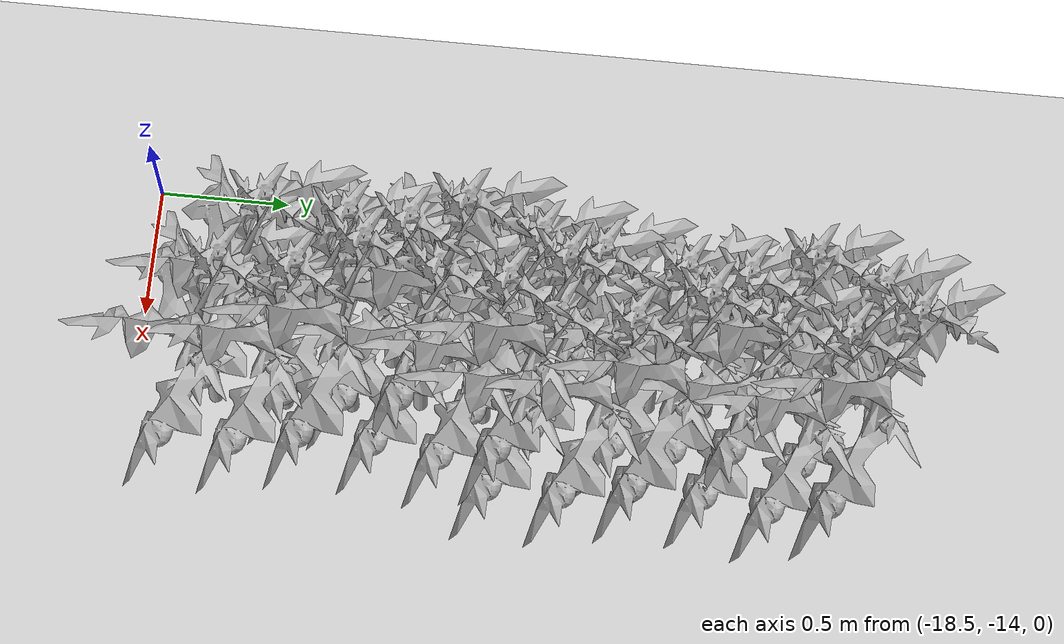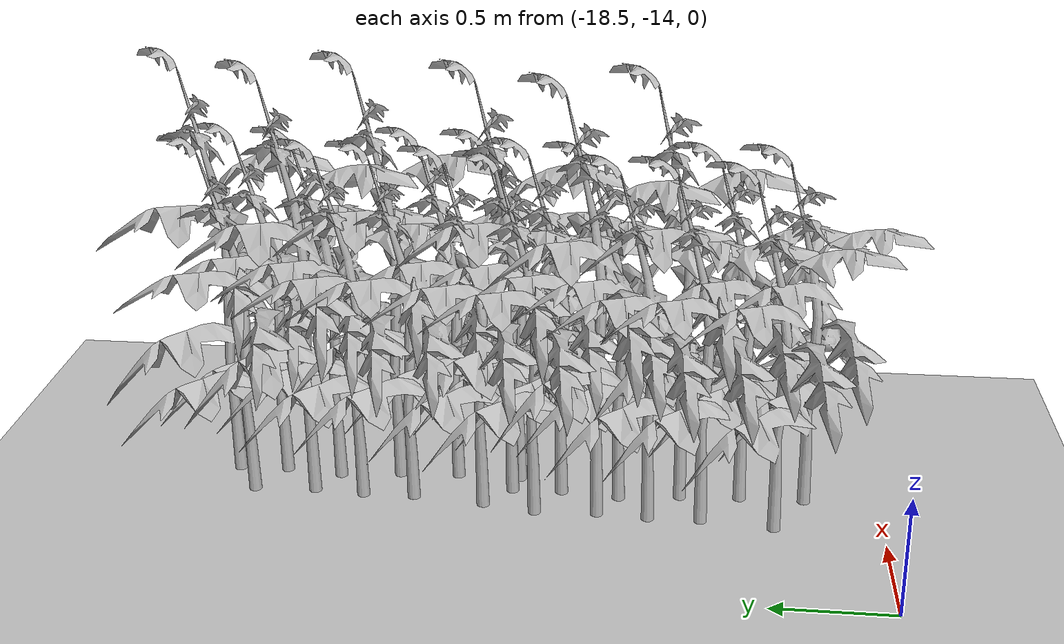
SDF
<sdf version="1.6">
 <world name="default">
  <model name="ground_plane">
   <static>1</static>
   <link name="link">
    <collision name="collision">
     <geometry><plane><normal>0 0 1</normal><size>100 100</size></plane></geometry>
     <surface>
      <contact><collide_bitmask>65535</collide_bitmask></contact>
      <friction><ode><mu>100</mu><mu2>50</mu2></ode></friction>
     </surface>
    </collision>
    <visual name="visual">
     <cast_shadows>0</cast_shadows>
     <geometry><plane><normal>0 0 1</normal><size>100 100</size></plane></geometry>
     <material>
      <script><uri>file://media/materials/scripts/gazebo.material</uri><name>Gazebo/Grey</name></script>
     </material>
    </visual>
   </link>
  </model>
  <model name="Front_Plant_1">
   <model name="tomato_plant_medium">
    <static>1</static>
    <link name="link">
     <collision name="collision">
      <pose>0 0 0 1.5708 -0 0</pose>
      <geometry><mesh><scale>0.5 0.5 0.5</scale><uri>model://stick/meshes/stick.dae</uri></mesh></geometry>
     </collision>
     <visual name="visual">
      <geometry>
       <mesh><scale>5e-06 5e-06 6e-06</scale><uri>model://tomato_plant_medium/meshes/tomato-plant.dae</uri></mesh>
      </geometry>
     </visual>
    </link>
    <pose>0.087453 -0.595994 0.012396 0 -0 0</pose>
   </model>
   <model name="tomato_plant_medium_0">
    <static>1</static>
    <link name="link">
     <collision name="collision">
      <pose>0 0 0 1.5708 -0 0</pose>
      <geometry><mesh><scale>0.5 0.5 0.5</scale><uri>model://stick/meshes/stick.dae</uri></mesh></geometry>
     </collision>
     <visual name="visual">
      <geometry>
       <mesh><scale>5e-06 5e-06 6e-06</scale><uri>model://tomato_plant_medium/meshes/tomato-plant.dae</uri></mesh>
      </geometry>
     </visual>
    </link>
    <pose>-0.086166 -0.251822 0.012396 0 -0 0</pose>
   </model>
   <model name="tomato_plant_medium_1">
    <static>1</static>
    <link name="link">
     <collision name="collision">
      <pose>0 0 0 1.5708 -0 0</pose>
      <geometry><mesh><scale>0.5 0.5 0.5</scale><uri>model://stick/meshes/stick.dae</uri></mesh></geometry>
     </collision>
     <visual name="visual">
      <geometry>
       <mesh><scale>5e-06 5e-06 6e-06</scale><uri>model://tomato_plant_medium/meshes/tomato-plant.dae</uri></mesh>
      </geometry>
     </visual>
    </link>
    <pose>0.080199 0.118127 0.012396 0 -0 0</pose>
   </model>
   <model name="tomato_plant_small">
    <static>1</static>
    <link name="link">
     <collision name="collision">
      <pose>0 0 0 1.5708 -0 0</pose>
      <geometry><mesh><scale>0.5 0.45 0.5</scale><uri>model://stick/meshes/stick.dae</uri></mesh></geometry>
     </collision>
     <visual name="visual">
      <geometry>
       <mesh><scale>5e-06 5e-06 5e-06</scale><uri>model://tomato_plant_small/meshes/tomato-plant.dae</uri></mesh>
      </geometry>
     </visual>
    </link>
    <pose>0.099683 -1.12011 0.012396 0 -0 0</pose>
   </model>
   <model name="tomato_plant_small_0">
    <static>1</static>
    <link name="link">
     <collision name="collision">
      <pose>0 0 0 1.5708 -0 0</pose>
      <geometry><mesh><scale>0.5 0.45 0.5</scale><uri>model://stick/meshes/stick.dae</uri></mesh></geometry>
     </collision>
     <visual name="visual">
      <geometry>
       <mesh><scale>5e-06 5e-06 5e-06</scale><uri>model://tomato_plant_small/meshes/tomato-plant.dae</uri></mesh>
      </geometry>
     </visual>
    </link>
    <pose>-0.138771 -0.983982 0.012396 0 -0 0</pose>
   </model>
   <model name="tomato_plant_small_1">
    <static>1</static>
    <link name="link">
     <collision name="collision">
      <pose>0 0 0 1.5708 -0 0</pose>
      <geometry><mesh><scale>0.5 0.45 0.5</scale><uri>model://stick/meshes/stick.dae</uri></mesh></geometry>
     </collision>
     <visual name="visual">
      <geometry>
       <mesh><scale>5e-06 5e-06 5e-06</scale><uri>model://tomato_plant_small/meshes/tomato-plant.dae</uri></mesh>
      </geometry>
     </visual>
    </link>
    <pose>0.101334 -0.848814 0.012396 0 -0 0</pose>
   </model>
   <model name="tomato_plant_small_2">
    <static>1</static>
    <link name="link">
     <collision name="collision">
      <pose>0 0 0 1.5708 -0 0</pose>
      <geometry><mesh><scale>0.5 0.45 0.5</scale><uri>model://stick/meshes/stick.dae</uri></mesh></geometry>
     </collision>
     <visual name="visual">
      <geometry>
       <mesh><scale>5e-06 5e-06 5e-06</scale><uri>model://tomato_plant_small/meshes/tomato-plant.dae</uri></mesh>
      </geometry>
     </visual>
    </link>
    <pose>-0.103369 -0.683189 0.012396 0 -0 0</pose>
   </model>
   <model name="tomato_plant_small_3">
    <static>1</static>
    <link name="link">
     <collision name="collision">
      <pose>0 0 0 1.5708 -0 0</pose>
      <geometry><mesh><scale>0.5 0.45 0.5</scale><uri>model://stick/meshes/stick.dae</uri></mesh></geometry>
     </collision>
     <visual name="visual">
      <geometry>
       <mesh><scale>5e-06 5e-06 5e-06</scale><uri>model://tomato_plant_small/meshes/tomato-plant.dae</uri></mesh>
      </geometry>
     </visual>
    </link>
    <pose>-0.104381 -0.464811 0.012396 0 -0 0</pose>
   </model>
   <model name="tomato_plant_small_4">
    <static>1</static>
    <link name="link">
     <collision name="collision">
      <pose>0 0 0 1.5708 -0 0</pose>
      <geometry><mesh><scale>0.5 0.45 0.5</scale><uri>model://stick/meshes/stick.dae</uri></mesh></geometry>
     </collision>
     <visual name="visual">
      <geometry>
       <mesh><scale>5e-06 5e-06 5e-06</scale><uri>model://tomato_plant_small/meshes/tomato-plant.dae</uri></mesh>
      </geometry>
     </visual>
    </link>
    <pose>0.055604 -0.336879 0.012396 0 -0 0</pose>
   </model>
   <model name="tomato_plant_small_5">
    <static>1</static>
    <link name="link">
     <collision name="collision">
      <pose>0 0 0 1.5708 -0 0</pose>
      <geometry><mesh><scale>0.5 0.45 0.5</scale><uri>model://stick/meshes/stick.dae</uri></mesh></geometry>
     </collision>
     <visual name="visual">
      <geometry>
       <mesh><scale>5e-06 5e-06 5e-06</scale><uri>model://tomato_plant_small/meshes/tomato-plant.dae</uri></mesh>
      </geometry>
     </visual>
    </link>
    <pose>0.085059 -0.092572 0.012396 0 -0 0</pose>
   </model>
   <model name="tomato_plant_small_6">
    <static>1</static>
    <link name="link">
     <collision name="collision">
      <pose>0 0 0 1.5708 -0 0</pose>
      <geometry><mesh><scale>0.5 0.45 0.5</scale><uri>model://stick/meshes/stick.dae</uri></mesh></geometry>
     </collision>
     <visual name="visual">
      <geometry>
       <mesh><scale>5e-06 5e-06 5e-06</scale><uri>model://tomato_plant_small/meshes/tomato-plant.dae</uri></mesh>
      </geometry>
     </visual>
    </link>
    <pose>-0.096345 0.008888 0.012396 0 -0 0</pose>
   </model>
   <static>0</static>
   <pose>-17.7831 -12.5824 0 0 -0 0</pose>
  </model>
  <model name="Front_Plant_1_0">
   <model name="tomato_plant_medium">
    <static>1</static>
    <link name="link">
     <collision name="collision">
      <pose>0 0 0 1.5708 -0 0</pose>
      <geometry><mesh><scale>0.5 0.5 0.5</scale><uri>model://stick/meshes/stick.dae</uri></mesh></geometry>
     </collision>
     <visual name="visual">
      <geometry>
       <mesh><scale>5e-06 5e-06 6e-06</scale><uri>model://tomato_plant_medium/meshes/tomato-plant.dae</uri></mesh>
      </geometry>
     </visual>
    </link>
    <pose>0.087453 -0.595994 0.012396 0 -0 0</pose>
   </model>
   <model name="tomato_plant_medium_0">
    <static>1</static>
    <link name="link">
     <collision name="collision">
      <pose>0 0 0 1.5708 -0 0</pose>
      <geometry><mesh><scale>0.5 0.5 0.5</scale><uri>model://stick/meshes/stick.dae</uri></mesh></geometry>
     </collision>
     <visual name="visual">
      <geometry>
       <mesh><scale>5e-06 5e-06 6e-06</scale><uri>model://tomato_plant_medium/meshes/tomato-plant.dae</uri></mesh>
      </geometry>
     </visual>
    </link>
    <pose>-0.086166 -0.251822 0.012396 0 -0 0</pose>
   </model>
   <model name="tomato_plant_medium_1">
    <static>1</static>
    <link name="link">
     <collision name="collision">
      <pose>0 0 0 1.5708 -0 0</pose>
      <geometry><mesh><scale>0.5 0.5 0.5</scale><uri>model://stick/meshes/stick.dae</uri></mesh></geometry>
     </collision>
     <visual name="visual">
      <geometry>
       <mesh><scale>5e-06 5e-06 6e-06</scale><uri>model://tomato_plant_medium/meshes/tomato-plant.dae</uri></mesh>
      </geometry>
     </visual>
    </link>
    <pose>0.080199 0.118127 0.012396 0 -0 0</pose>
   </model>
   <model name="tomato_plant_small">
    <static>1</static>
    <link name="link">
     <collision name="collision">
      <pose>0 0 0 1.5708 -0 0</pose>
      <geometry><mesh><scale>0.5 0.45 0.5</scale><uri>model://stick/meshes/stick.dae</uri></mesh></geometry>
     </collision>
     <visual name="visual">
      <geometry>
       <mesh><scale>5e-06 5e-06 5e-06</scale><uri>model://tomato_plant_small/meshes/tomato-plant.dae</uri></mesh>
      </geometry>
     </visual>
    </link>
    <pose>0.099683 -1.12011 0.012396 0 -0 0</pose>
   </model>
   <model name="tomato_plant_small_0">
    <static>1</static>
    <link name="link">
     <collision name="collision">
      <pose>0 0 0 1.5708 -0 0</pose>
      <geometry><mesh><scale>0.5 0.45 0.5</scale><uri>model://stick/meshes/stick.dae</uri></mesh></geometry>
     </collision>
     <visual name="visual">
      <geometry>
       <mesh><scale>5e-06 5e-06 5e-06</scale><uri>model://tomato_plant_small/meshes/tomato-plant.dae</uri></mesh>
      </geometry>
     </visual>
    </link>
    <pose>-0.138771 -0.983982 0.012396 0 -0 0</pose>
   </model>
   <model name="tomato_plant_small_1">
    <static>1</static>
    <link name="link">
     <collision name="collision">
      <pose>0 0 0 1.5708 -0 0</pose>
      <geometry><mesh><scale>0.5 0.45 0.5</scale><uri>model://stick/meshes/stick.dae</uri></mesh></geometry>
     </collision>
     <visual name="visual">
      <geometry>
       <mesh><scale>5e-06 5e-06 5e-06</scale><uri>model://tomato_plant_small/meshes/tomato-plant.dae</uri></mesh>
      </geometry>
     </visual>
    </link>
    <pose>0.101334 -0.848814 0.012396 0 -0 0</pose>
   </model>
   <model name="tomato_plant_small_2">
    <static>1</static>
    <link name="link">
     <collision name="collision">
      <pose>0 0 0 1.5708 -0 0</pose>
      <geometry><mesh><scale>0.5 0.45 0.5</scale><uri>model://stick/meshes/stick.dae</uri></mesh></geometry>
     </collision>
     <visual name="visual">
      <geometry>
       <mesh><scale>5e-06 5e-06 5e-06</scale><uri>model://tomato_plant_small/meshes/tomato-plant.dae</uri></mesh>
      </geometry>
     </visual>
    </link>
    <pose>-0.103369 -0.683189 0.012396 0 -0 0</pose>
   </model>
   <model name="tomato_plant_small_3">
    <static>1</static>
    <link name="link">
     <collision name="collision">
      <pose>0 0 0 1.5708 -0 0</pose>
      <geometry><mesh><scale>0.5 0.45 0.5</scale><uri>model://stick/meshes/stick.dae</uri></mesh></geometry>
     </collision>
     <visual name="visual">
      <geometry>
       <mesh><scale>5e-06 5e-06 5e-06</scale><uri>model://tomato_plant_small/meshes/tomato-plant.dae</uri></mesh>
      </geometry>
     </visual>
    </link>
    <pose>-0.104381 -0.464811 0.012396 0 -0 0</pose>
   </model>
   <model name="tomato_plant_small_4">
    <static>1</static>
    <link name="link">
     <collision name="collision">
      <pose>0 0 0 1.5708 -0 0</pose>
      <geometry><mesh><scale>0.5 0.45 0.5</scale><uri>model://stick/meshes/stick.dae</uri></mesh></geometry>
     </collision>
     <visual name="visual">
      <geometry>
       <mesh><scale>5e-06 5e-06 5e-06</scale><uri>model://tomato_plant_small/meshes/tomato-plant.dae</uri></mesh>
      </geometry>
     </visual>
    </link>
    <pose>0.055604 -0.336879 0.012396 0 -0 0</pose>
   </model>
   <model name="tomato_plant_small_5">
    <static>1</static>
    <link name="link">
     <collision name="collision">
      <pose>0 0 0 1.5708 -0 0</pose>
      <geometry><mesh><scale>0.5 0.45 0.5</scale><uri>model://stick/meshes/stick.dae</uri></mesh></geometry>
     </collision>
     <visual name="visual">
      <geometry>
       <mesh><scale>5e-06 5e-06 5e-06</scale><uri>model://tomato_plant_small/meshes/tomato-plant.dae</uri></mesh>
      </geometry>
     </visual>
    </link>
    <pose>0.085059 -0.092572 0.012396 0 -0 0</pose>
   </model>
   <model name="tomato_plant_small_6">
    <static>1</static>
    <link name="link">
     <collision name="collision">
      <pose>0 0 0 1.5708 -0 0</pose>
      <geometry><mesh><scale>0.5 0.45 0.5</scale><uri>model://stick/meshes/stick.dae</uri></mesh></geometry>
     </collision>
     <visual name="visual">
      <geometry>
       <mesh><scale>5e-06 5e-06 5e-06</scale><uri>model://tomato_plant_small/meshes/tomato-plant.dae</uri></mesh>
      </geometry>
     </visual>
    </link>
    <pose>-0.096345 0.008888 0.012396 0 -0 0</pose>
   </model>
   <static>0</static>
   <pose>-17.697 -11.368 0 0 -0 0</pose>
  </model>
 </world>
</sdf>
